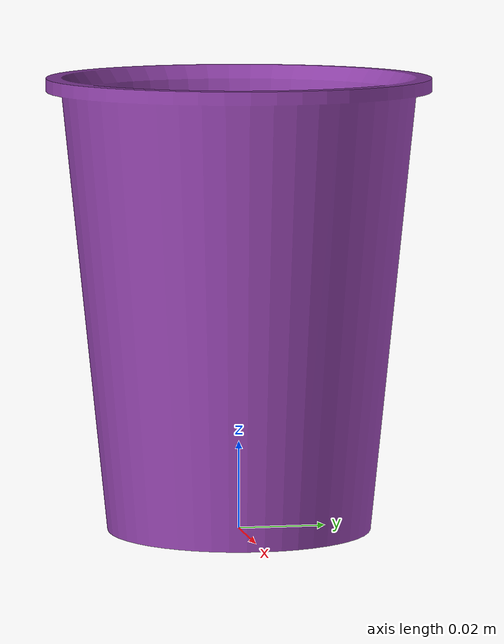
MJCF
<mujoco model="Cup_Purple">
  <default>
    <default class="visual">
      <geom group="2" type="mesh" contype="0" conaffinity="0"/>
    </default>
    <default class="collision">
      <geom group="3" type="mesh"/>
    </default>
  </default>
  <asset>
    <material name="Cup_Purple_Mat" specular="0.5" shininess="0.49" rgba="0.550000 0.250000 0.650000 1.000000"/>
    <mesh file="Cup_Purple.obj"/>
    <mesh file="Cup_Purple_collision_0.obj"/>
    <mesh file="Cup_Purple_collision_1.obj"/>
    <mesh file="Cup_Purple_collision_2.obj"/>
    <mesh file="Cup_Purple_collision_3.obj"/>
    <mesh file="Cup_Purple_collision_4.obj"/>
    <mesh file="Cup_Purple_collision_5.obj"/>
    <mesh file="Cup_Purple_collision_6.obj"/>
    <mesh file="Cup_Purple_collision_7.obj"/>
    <mesh file="Cup_Purple_collision_8.obj"/>
    <mesh file="Cup_Purple_collision_9.obj"/>
    <mesh file="Cup_Purple_collision_10.obj"/>
    <mesh file="Cup_Purple_collision_11.obj"/>
    <mesh file="Cup_Purple_collision_12.obj"/>
    <mesh file="Cup_Purple_collision_13.obj"/>
    <mesh file="Cup_Purple_collision_14.obj"/>
    <mesh file="Cup_Purple_collision_15.obj"/>
    <mesh file="Cup_Purple_collision_16.obj"/>
    <mesh file="Cup_Purple_collision_17.obj"/>
    <mesh file="Cup_Purple_collision_18.obj"/>
    <mesh file="Cup_Purple_collision_19.obj"/>
    <mesh file="Cup_Purple_collision_20.obj"/>
    <mesh file="Cup_Purple_collision_21.obj"/>
    <mesh file="Cup_Purple_collision_22.obj"/>
    <mesh file="Cup_Purple_collision_23.obj"/>
    <mesh file="Cup_Purple_collision_24.obj"/>
    <mesh file="Cup_Purple_collision_25.obj"/>
    <mesh file="Cup_Purple_collision_26.obj"/>
    <mesh file="Cup_Purple_collision_27.obj"/>
    <mesh file="Cup_Purple_collision_28.obj"/>
    <mesh file="Cup_Purple_collision_29.obj"/>
    <mesh file="Cup_Purple_collision_30.obj"/>
    <mesh file="Cup_Purple_collision_31.obj"/>
    <mesh file="Cup_Purple_collision_32.obj"/>
    <mesh file="Cup_Purple_collision_33.obj"/>
    <mesh file="Cup_Purple_collision_34.obj"/>
    <mesh file="Cup_Purple_collision_35.obj"/>
    <mesh file="Cup_Purple_collision_36.obj"/>
    <mesh file="Cup_Purple_collision_37.obj"/>
    <mesh file="Cup_Purple_collision_38.obj"/>
    <mesh file="Cup_Purple_collision_39.obj"/>
    <mesh file="Cup_Purple_collision_40.obj"/>
    <mesh file="Cup_Purple_collision_41.obj"/>
    <mesh file="Cup_Purple_collision_42.obj"/>
    <mesh file="Cup_Purple_collision_43.obj"/>
    <mesh file="Cup_Purple_collision_44.obj"/>
    <mesh file="Cup_Purple_collision_45.obj"/>
    <mesh file="Cup_Purple_collision_46.obj"/>
    <mesh file="Cup_Purple_collision_47.obj"/>
  </asset>
  <worldbody>
    <body name="Cup_Purple">
      <geom material="Cup_Purple_Mat" mesh="Cup_Purple" class="visual"/>
      <geom mesh="Cup_Purple_collision_0" rgba="0.6053303427237079 0.4104457561196242 0.9132255820618125 1" class="collision"/>
      <geom mesh="Cup_Purple_collision_1" rgba="0.32775220718446174 0.40975688649079745 0.06755049153067849 1" class="collision"/>
      <geom mesh="Cup_Purple_collision_2" rgba="0.9622407193375462 0.0936448263343228 0.21064638259579216 1" class="collision"/>
      <geom mesh="Cup_Purple_collision_3" rgba="0.8653000846600722 0.5012803735962567 0.5831985889304869 1" class="collision"/>
      <geom mesh="Cup_Purple_collision_4" rgba="0.5741088020468522 0.8445165634266909 0.12703835661167595 1" class="collision"/>
      <geom mesh="Cup_Purple_collision_5" rgba="0.49858818865371346 0.33233332785315084 0.12935767601850023 1" class="collision"/>
      <geom mesh="Cup_Purple_collision_6" rgba="0.6335687616666308 0.27593448884685345 0.49719474059120417 1" class="collision"/>
      <geom mesh="Cup_Purple_collision_7" rgba="0.17261082197122712 0.33643154086039284 0.2850441715615287 1" class="collision"/>
      <geom mesh="Cup_Purple_collision_8" rgba="0.6630232765206374 0.9940186935968967 0.07925910343868559 1" class="collision"/>
      <geom mesh="Cup_Purple_collision_9" rgba="0.12303342784060511 0.1459209362066345 0.5586555464398157 1" class="collision"/>
      <geom mesh="Cup_Purple_collision_10" rgba="0.7730677846040823 0.4750489384158624 0.05066690756543313 1" class="collision"/>
      <geom mesh="Cup_Purple_collision_11" rgba="0.6086687733292825 0.23631013997251327 0.08262537996108332 1" class="collision"/>
      <geom mesh="Cup_Purple_collision_12" rgba="0.49297014054381694 0.11909961816361114 0.5354736099292282 1" class="collision"/>
      <geom mesh="Cup_Purple_collision_13" rgba="0.6688040247256698 0.552524096624946 0.5212493266101788 1" class="collision"/>
      <geom mesh="Cup_Purple_collision_14" rgba="0.09708397647614064 0.9191740008272381 0.26813871174151005 1" class="collision"/>
      <geom mesh="Cup_Purple_collision_15" rgba="0.4995030834645501 0.37653650659660276 0.5119480443577047 1" class="collision"/>
      <geom mesh="Cup_Purple_collision_16" rgba="0.6149964961752147 0.6949081164579685 0.9936258266881076 1" class="collision"/>
      <geom mesh="Cup_Purple_collision_17" rgba="0.014940156582503361 0.957394327227346 0.3945954994082288 1" class="collision"/>
      <geom mesh="Cup_Purple_collision_18" rgba="0.5707664200130069 0.7920103625591828 0.6740975493521117 1" class="collision"/>
      <geom mesh="Cup_Purple_collision_19" rgba="0.6509983291796115 0.4290143606533925 0.9778219286358315 1" class="collision"/>
      <geom mesh="Cup_Purple_collision_20" rgba="0.037732114832840113 0.7518885919422388 0.7473413483132958 1" class="collision"/>
      <geom mesh="Cup_Purple_collision_21" rgba="0.9398243901280599 0.28116935933063925 0.6406510428302319 1" class="collision"/>
      <geom mesh="Cup_Purple_collision_22" rgba="0.3740547393337291 0.6231939565702811 0.1906646346872355 1" class="collision"/>
      <geom mesh="Cup_Purple_collision_23" rgba="0.08025618707121929 0.7649162196754627 0.9432743994645059 1" class="collision"/>
      <geom mesh="Cup_Purple_collision_24" rgba="0.7830657101221645 0.2496383017834769 0.9018346527720331 1" class="collision"/>
      <geom mesh="Cup_Purple_collision_25" rgba="0.9410088061447159 0.2270385804227948 0.4699016872863385 1" class="collision"/>
      <geom mesh="Cup_Purple_collision_26" rgba="0.44848368392135207 0.9438612726441127 0.49608071030804723 1" class="collision"/>
      <geom mesh="Cup_Purple_collision_27" rgba="0.7330402018538507 0.10318761490712403 0.4863298049636269 1" class="collision"/>
      <geom mesh="Cup_Purple_collision_28" rgba="0.4394620059227766 0.3682407803581099 0.2802662766948275 1" class="collision"/>
      <geom mesh="Cup_Purple_collision_29" rgba="0.6765597436811983 0.4642546177511526 0.672861182033517 1" class="collision"/>
      <geom mesh="Cup_Purple_collision_30" rgba="0.0469234356852366 0.30268513093292426 0.13277476228306384 1" class="collision"/>
      <geom mesh="Cup_Purple_collision_31" rgba="0.48500469391697265 0.07456583251616689 0.4343180143101252 1" class="collision"/>
      <geom mesh="Cup_Purple_collision_32" rgba="0.015086144997446094 0.22802598760006998 0.6663267319662993 1" class="collision"/>
      <geom mesh="Cup_Purple_collision_33" rgba="0.26842725546137447 0.6007391747596907 0.8867559819977621 1" class="collision"/>
      <geom mesh="Cup_Purple_collision_34" rgba="0.6453472579638707 0.6215645397955694 0.856255925339669 1" class="collision"/>
      <geom mesh="Cup_Purple_collision_35" rgba="0.3591520500938644 0.5268058305818508 0.4043745033284314 1" class="collision"/>
      <geom mesh="Cup_Purple_collision_36" rgba="0.6624430134114493 0.7350974779147599 0.7589239991482626 1" class="collision"/>
      <geom mesh="Cup_Purple_collision_37" rgba="0.6426926091641656 0.025710640815746477 0.8748704870759558 1" class="collision"/>
      <geom mesh="Cup_Purple_collision_38" rgba="0.42048767387507113 0.9768047705536872 0.17011057050541178 1" class="collision"/>
      <geom mesh="Cup_Purple_collision_39" rgba="0.20372639623828515 0.13950515576533984 0.3930350914379538 1" class="collision"/>
      <geom mesh="Cup_Purple_collision_40" rgba="0.45830086889369914 0.428716787953501 0.3939616439253796 1" class="collision"/>
      <geom mesh="Cup_Purple_collision_41" rgba="0.6734303960054177 0.30252206330987674 0.36441501418193256 1" class="collision"/>
      <geom mesh="Cup_Purple_collision_42" rgba="0.17436502499323436 0.18420485755576044 0.5105793811444692 1" class="collision"/>
      <geom mesh="Cup_Purple_collision_43" rgba="0.7891048061921156 0.749648271520433 0.5015332690888684 1" class="collision"/>
      <geom mesh="Cup_Purple_collision_44" rgba="0.5292651072615189 0.7191294387116293 0.8790368895830855 1" class="collision"/>
      <geom mesh="Cup_Purple_collision_45" rgba="0.7116264590287055 0.6781345923145601 0.40580238516447 1" class="collision"/>
      <geom mesh="Cup_Purple_collision_46" rgba="0.90894762863092 0.046975901090908656 0.020684007215204803 1" class="collision"/>
      <geom mesh="Cup_Purple_collision_47" rgba="0.08566420787575846 0.43899767717372895 0.35550003431032917 1" class="collision"/>
    </body>
  </worldbody>
</mujoco>
